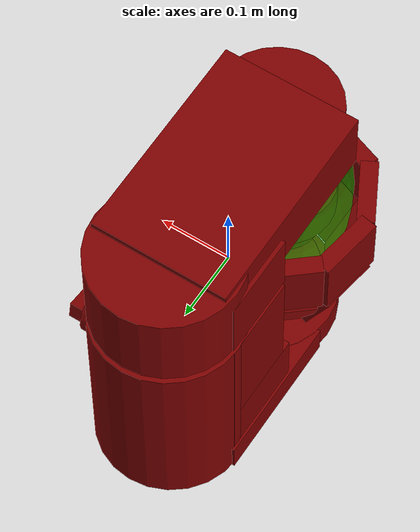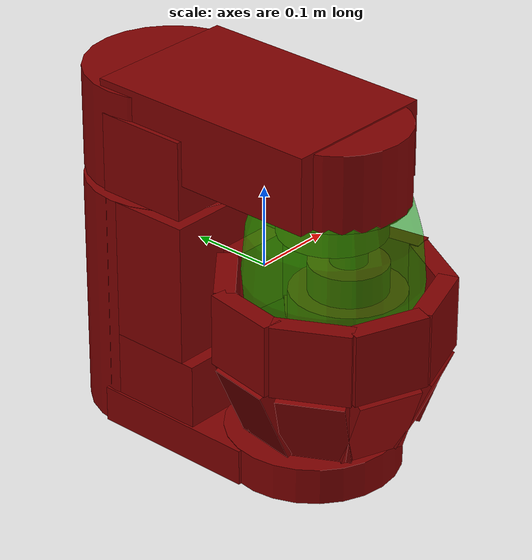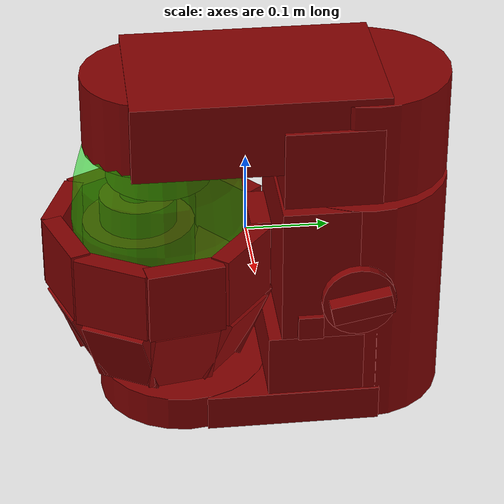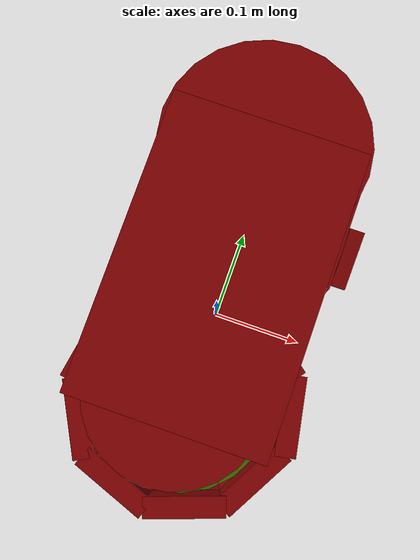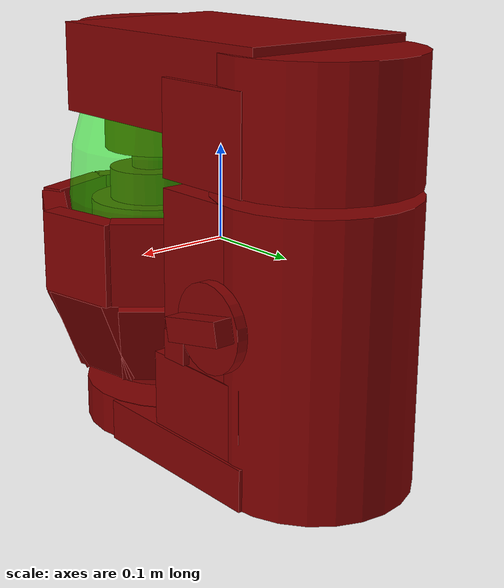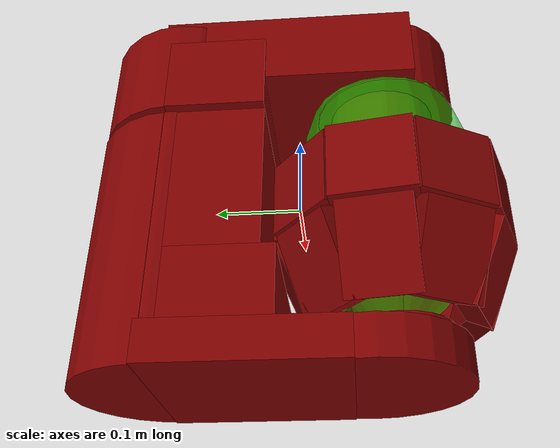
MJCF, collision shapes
<?xml version='1.0' encoding='UTF-8'?>
<mujoco model="model">
  <option timestep="0.002" gravity="0.0 0.0 -9.81"/>
  <compiler angle="radian"/>
  <asset>
    <mesh file="visuals/blender.obj" name="blender_vis"/>
    <mesh file="visuals/bowl.obj" name="bowl_vis"/>
    <mesh file="visuals/button_head_lock.obj" name="button_head_lock_vis"/>
    <mesh file="visuals/head.obj" name="head_vis"/>
    <mesh file="visuals/knob_speed.obj" name="knob_speed_vis"/>
    <mesh file="visuals/Body001.obj" name="Body001_vis"/>
    <texture file="visuals/T_BC001.png" name="Body001_material" type="2d"/>
    <material name="Body001_material" rgba="1 1 1 1.0" texture="Body001_material" shininess="0.5" specular="0.3103448502657381"/>
    <texture file="visuals/T_BC001.png" name="bowl_material" type="2d"/>
    <material name="bowl_material" rgba="1 1 1 1.0" texture="bowl_material" shininess="0.5" specular="2"/>
    <texture file="visuals/T_BC001.png" name="button_head_lock_material" type="2d"/>
    <material name="button_head_lock_material" rgba="1 1 1 1.0" texture="button_head_lock_material" shininess="0.5" specular="0.3103448502657381"/>
    <texture file="visuals/T_BC001.png" name="head_material" type="2d"/>
    <material name="head_material" rgba="1 1 1 1.0" texture="head_material" shininess="0.5" specular="0.3103448502657381"/>
    <texture file="visuals/T_BC001.png" name="blender_material" type="2d"/>
    <material name="blender_material" rgba="1 1 1 1.0" texture="blender_material" shininess="0.5" specular="2"/>
    <texture file="visuals/T_BC001.png" name="knob_speed_material" type="2d"/>
    <material name="knob_speed_material" rgba="1 1 1 1.0" texture="knob_speed_material" shininess="0.5" specular="1"/>
  </asset>
  <default>
    <default class="visual">
      <geom conaffinity="0" contype="0" group="1" type="mesh"/>
    </default>
    <default class="collision">
      <geom group="0" rgba="0.5 0 0 0.5"/>
    </default>
    <default class="spawn">
      <geom group="0" rgba="1 1 1 0.5" contype="0" conaffinity="0"/>
      <site group="0" rgba="1 1 1 0.5"/>
    </default>
    <default class="region">
      <geom group="1" conaffinity="0" contype="0" rgba="0 1 0 0"/>
    </default>
  </default>
  <worldbody>
    <body>
      <body name="object">
        <geom mesh="Body001_vis" type="mesh" solimp="0.998 0.998 0.001" solref="0.001 1" friction="0.95 0.3 0.1" class="visual" material="Body001_material"/>
        <geom type="cylinder" pos="-0.00213150 -0.07880050 -0.19917368" size="0.10441090911626816 0.022463563829660416" quat="1.0 0.0 0.0 0.0" class="collision"/>
        <geom type="cylinder" pos="-0.00213149 0.14028848 -0.07297169" size="0.10340665280818939 0.14866557717323303" quat="1.0 0.0 0.0 0.0" class="collision"/>
        <geom type="cylinder" pos="-0.00213150 -0.10484405 -0.17169810" size="0.06511843204498291 0.004570075310766697" quat="1.0 0.0 0.0 0.0" class="collision"/>
        <geom type="box" pos="-0.00213150 0.04758107 -0.19949631" size="0.10559983551502228 0.10542922466993332 0.022264186292886734" quat="1.0 0.0 0.0 0.0" class="collision"/>
        <geom type="box" pos="-0.00213136 0.08257581 -0.13924984" size="0.10242745280265808 0.06562068313360214 0.04127616807818413" quat="1.0 0.0 0.0 0.0" class="collision"/>
        <geom type="box" pos="-0.00263928 0.09051635 -0.01141952" size="0.10191963613033295 0.05768014118075371 0.08676526695489883" quat="1.0 0.0 0.0 0.0" class="collision"/>
        <body name="bowl">
          <geom mesh="bowl_vis" type="mesh" solimp="0.998 0.998 0.001" solref="0.001 1" friction="0.95 0.3 0.1" class="visual" material="bowl_material"/>
          <geom type="box" pos="0.11868225 -0.08463751 -0.01798433" size="0.012190205976366997 0.04628506302833557 0.044027213007211685" quat="0.9960408806800842 0.0 0.0 0.08889619261026382" class="collision"/>
          <geom type="box" pos="0.10180596 -0.16546922 -0.01885863" size="0.012190205976366997 0.04628505930304527 0.044027213007211685" quat="0.9678325057029724 0.0 -0.0 -0.2515954077243805" class="collision"/>
          <geom type="box" pos="0.03891659 -0.21823965 -0.01628440" size="0.012190206907689571 0.046285055577754974 0.044027213007211685" quat="0.8182713985443115 -2.679056088084053e-09 1.7841770283411051e-09 -0.5748320817947388" class="collision"/>
          <geom type="box" pos="-0.04386611 -0.21892612 -0.01628440" size="0.012190206907689571 0.046285051852464676 0.044027213007211685" quat="0.5730414390563965 -1.9095476311292714e-09 2.5911883749785147e-09 -0.8195263743400574" class="collision"/>
          <geom type="box" pos="-0.10606900 -0.16546920 -0.01628440" size="0.012190209701657295 0.04628506302833557 0.044027213007211685" quat="0.24354346096515656 -8.613289526060441e-10 3.1014095736026093e-09 -0.9698899984359741" class="collision"/>
          <geom type="box" pos="-0.12297325 -0.08346152 -0.01628440" size="0.01219020877033472 0.04628506302833557 0.044027213007211685" quat="0.08091280609369278 -1.8055808237438242e-10 -3.2137266181564428e-09 0.9967212080955505" class="collision"/>
          <geom type="box" pos="-0.07927673 -0.01352276 -0.01628440" size="0.012190209701657295 0.04628505930304527 0.044027213007211685" quat="0.4214891195297241 -1.283660289175259e-09 -2.951754840552212e-09 0.9068334698677063" class="collision"/>
          <geom type="box" pos="-0.00213150 0.01454458 -0.01628440" size="0.03680093213915825 0.012316511943936348 0.044027213007211685" quat="1.0 0.0 0.0 0.0" class="collision"/>
          <geom type="box" pos="0.07501373 -0.01352279 -0.01628440" size="0.012190205976366997 0.04628506675362587 0.044027213007211685" quat="0.9014719724655151 -2.8661004680685664e-09 -1.4649622626095038e-09 0.43283751606941223" class="collision"/>
          <geom type="box" pos="0.08469141 -0.15592622 -0.10918507" size="0.013319350779056549 0.039754386991262436 0.05010315403342247" quat="0.9475469589233398 0.051241643726825714 0.19711539149284363 -0.24632203578948975" class="collision"/>
          <geom type="box" pos="0.03227111 -0.19980559 -0.10661084" size="0.013319349847733974 0.03975437209010124 0.05010316148400307" quat="0.8011206388473511 0.11707421392202377 0.16665473580360413 -0.5627837777137756" class="collision"/>
          <geom type="box" pos="-0.03714008 -0.20052129 -0.10661084" size="0.013319349847733974 0.03975438326597214 0.05010316148400307" quat="0.5610307455062866 0.1669103056192398 0.11670953780412674 -0.8023492693901062" class="collision"/>
          <geom type="box" pos="-0.08879820 -0.15621196 -0.10661084" size="0.013319352641701698 0.03975437954068184 0.050103168934583664" quat="0.23843884468078613 0.19753442704677582 0.0496017187833786 -0.949561357498169" class="collision"/>
          <geom type="box" pos="-0.10363451 -0.08662215 -0.10661084" size="0.013319351710379124 0.03975437581539154 0.05010315030813217" quat="0.07921700924634933 -0.20299912989139557 0.016479285433888435 0.9758301377296448" class="collision"/>
          <geom type="box" pos="-0.06664375 -0.02850222 -0.10661084" size="0.013319352641701698 0.03975437209010124 0.05010314658284187" quat="0.4126547873020172 -0.18469198048114777 0.08584334701299667 0.8878264427185059" class="collision"/>
          <geom type="box" pos="-0.00142345 -0.00502672 -0.10661084" size="0.013319350779056549 0.03975437954068184 0.050103165209293365" quat="0.6796635389328003 -0.14659297466278076 0.14138838648796082 0.7046824097633362" class="collision"/>
          <geom type="box" pos="0.06276070 -0.02881461 -0.10661084" size="0.013319351710379124 0.03975438326597214 0.05010315775871277" quat="0.8825774788856506 -0.08815458416938782 0.18359996378421783 0.42376503348350525" class="collision"/>
          <geom type="box" pos="0.09939663 -0.08810761 -0.10473609" size="0.013319351710379124 0.03975437581539154 0.052034009248018265" quat="0.9751641750335693 -0.01810520328581333 0.20286044478416443 0.08703292161226273" class="collision"/>
          <geom type="cylinder" pos="-0.00213150 -0.10484405 -0.16315336" size="0.06511843204498291 0.003244356019422412" quat="1.0 0.0 0.0 0.0" class="collision"/>
          <geom name="reg_bowl" type="ellipsoid" pos="-0.00213152 -0.10546089 0.02847088" size="0.10276632755994797 0.10472461581230164 0.18658126890659332" rgba="0 1 0 0.5" class="region"/>
        </body>
        <body name="button_head_lock">
          <joint axis="-1.0 0.0 0.0" pos="0.10834368 0.06597506 -0.07555261" limited="true" name="button_head_lock_joint" range="0.0 0.005" type="slide" damping="1" frictionloss="1" armature=".01" stiffness="0.05"/>
          <geom mesh="button_head_lock_vis" type="mesh" solimp="0.998 0.998 0.001" solref="0.001 1" friction="0.95 0.3 0.1" class="visual" material="button_head_lock_material"/>
          <geom class="collision" type="box" pos="0.11017175 0.06597545 -0.07555234" size="0.015115930698812008 0.015115930698812008 0.003514397656545043" quat="0.7071068286895752 -0.0 0.7071067690849304 0.0" name="button_head_lock_main"/>
        </body>
        <body name="head">
          <joint axis="-1.0 0.0 0.0" pos="-0.00213147 0.23925854 0.07369592" limited="true" name="head_joint" range="0.0 1.5707963267948966" type="hinge" damping="1" frictionloss="1" armature=".01" stiffness="0.05"/>
          <geom mesh="head_vis" type="mesh" solimp="0.998 0.998 0.001" solref="0.001 1" friction="0.95 0.3 0.1" class="visual" material="head_material"/>
          <geom type="cylinder" pos="-0.00213153 0.14028850 0.14887044" size="0.10213780403137207 0.0630406066775322" quat="1.0 0.0 0.0 0.0" class="collision"/>
          <geom type="box" pos="-0.00213136 0.09178289 0.13390743" size="0.10242745280265808 0.05768014118075371 0.048582036048173904" quat="1.0 0.0 0.0 0.0" class="collision"/>
          <geom type="box" pos="-0.00213136 0.00831516 0.17389228" size="0.09657689929008484 0.14943094551563263 0.046632736921310425" quat="1.0 0.0 0.0 0.0" class="collision"/>
          <geom type="cylinder" pos="-0.00213152 -0.10856241 0.17179387" size="0.08473727852106094 0.04690329730510712" quat="1.0 0.0 0.0 0.0" class="collision"/>
          <geom type="cylinder" pos="-0.00213152 -0.10367232 0.10478982" size="0.06355025619268417 0.022438563406467438" quat="1.0 0.0 0.0 0.0" class="collision"/>
          <body name="blender">
            <joint axis="0.0 0.0 1.0" pos="-0.00213148 -0.12858777 0.00573912" limited="false" name="blender_joint" range="0 360" type="hinge" damping="1" frictionloss="1" armature=".01" stiffness="0.05"/>
            <geom mesh="blender_vis" type="mesh" solimp="0.998 0.998 0.001" solref="0.001 1" friction="0.95 0.3 0.1" class="visual" material="blender_material"/>
            <geom type="cylinder" pos="-0.00436264 -0.12944496 -0.00618273" size="0.06798271089792252 0.02627846598625183" quat="1.0 0.0 0.0 0.0" class="collision"/>
            <geom type="cylinder" pos="-0.00436263 -0.12944496 -0.05638286" size="0.04883493483066559 0.022687526419758797" quat="1.0 0.0 0.0 0.0" class="collision"/>
            <geom type="cylinder" pos="-0.00436264 -0.12944496 0.06630619" size="0.021665161475539207 0.014338434673845768" quat="1.0 0.0 0.0 0.0" class="collision"/>
            <geom type="cylinder" pos="-0.00436263 -0.12944496 0.03703136" size="0.046580854803323746 0.018005654215812683" quat="1.0 0.0 0.0 0.0" class="collision"/>
          </body>
        </body>
        <body name="knob_speed">
          <joint axis="-1.0 0.0 0.0" pos="0.12062592 0.12184088 -0.03954411" limited="true" name="knob_speed_joint" range="0.0 3.3161255787892263" type="hinge" damping="0.05" armature="0.001"/>
          <geom mesh="knob_speed_vis" type="mesh" solimp="0.998 0.998 0.001" solref="0.001 1" friction="0.95 0.3 0.1" class="visual" material="knob_speed_material"/>
          <geom type="cylinder" pos="0.11175395 0.12283858 -0.03956089" size="0.04446208477020264 0.005899335257709026" quat="0.7071068286895752 1.2101617485882343e-08 0.7071067690849304 -1.2101616597703924e-08" class="collision"/>
          <geom class="collision" type="box" pos="0.12546069 0.12377404 -0.03749814" size="0.012517601251602173 0.03671196103096008 0.012120201252400875" quat="0.994899570941925 0.10087060928344727 0.0 0.0" name="knob_speed_main"/>
        </body>
        <geom class="region" name="reg_main" type="box" pos="-0.002131509999999996 0.02568127499999999 1.4500000000694513e-07" size="0.10318089999999999 0.217081705 0.221244885"/>
      </body>
    </body>
  </worldbody>
  <actuator>
    <motor name="button_head_lock_joint_actuator" joint="button_head_lock_joint" gear="0.5"/>
    <motor name="head_joint_actuator" joint="head_joint" gear="0.5"/>
    <motor name="knob_speed_joint_actuator" joint="knob_speed_joint" gear="0.5"/>
    <motor name="blender_joint_actuator" joint="blender_joint" gear="10"/>
  </actuator>
</mujoco>
